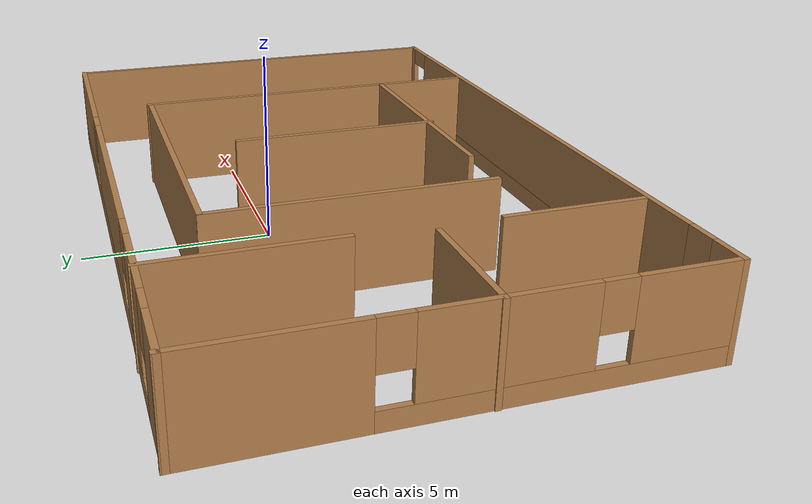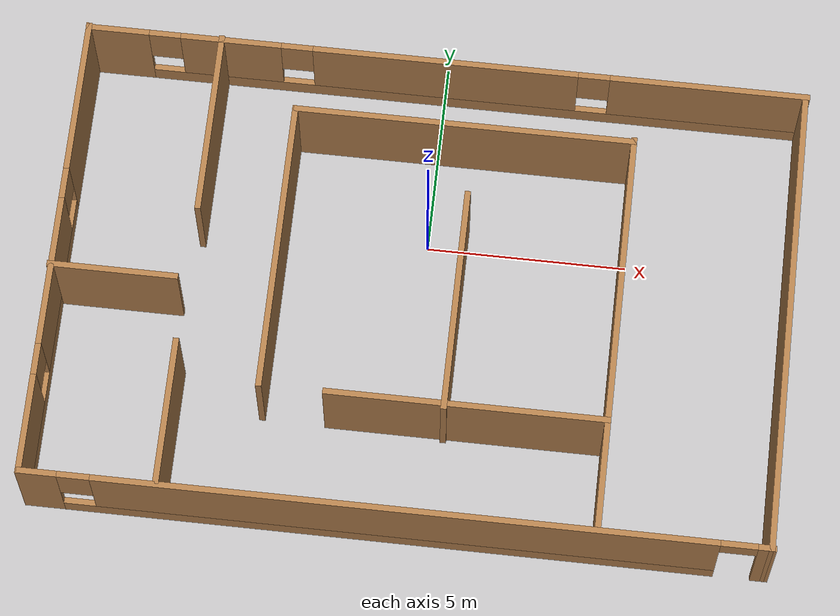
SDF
<?xml version='1.0'?>
<sdf version='1.7'>
  <model name='Building'>
    <pose>0.005469 -1.80858 0 0 -0 0</pose>
    <link name='Wall_0'>
      <pose>-9.05381 0.015245 0 0 -0 -1.5708</pose>
      <visual name='Wall_0_Visual_0'>
        <pose>-3.98822 0 1.25 0 -0 0</pose>
        <geometry>
          <box>
            <size>4.02355 0.15 2.5</size>
          </box>
        </geometry>
        <material>
          <script>
            <uri>file://media/materials/scripts/gazebo.material</uri>
            <name>Gazebo/Wood</name>
          </script>
          <ambient>1 1 1 1</ambient>
        </material>
        <meta>
          <layer>0</layer>
        </meta>
      </visual>
      <collision name='Wall_0_Collision_0'>
        <geometry>
          <box>
            <size>4.02355 0.15 2.5</size>
          </box>
        </geometry>
        <pose>-3.98822 0 1.25 0 -0 0</pose>
      </collision>
      <visual name='Wall_0_Visual_1'>
        <pose>2.01178 0 0.25 0 -0 0</pose>
        <geometry>
          <box>
            <size>7.97645 0.15 0.5</size>
          </box>
        </geometry>
        <material>
          <script>
            <uri>file://media/materials/scripts/gazebo.material</uri>
            <name>Gazebo/Wood</name>
          </script>
          <ambient>1 1 1 1</ambient>
        </material>
        <meta>
          <layer>0</layer>
        </meta>
      </visual>
      <collision name='Wall_0_Collision_1'>
        <geometry>
          <box>
            <size>7.97645 0.15 0.5</size>
          </box>
        </geometry>
        <pose>2.01178 0 0.25 0 -0 0</pose>
      </collision>
      <visual name='Wall_0_Visual_2'>
        <pose>0.759746 0 1.5 0 -0 0</pose>
        <geometry>
          <box>
            <size>3.87238 0.15 2</size>
          </box>
        </geometry>
        <material>
          <script>
            <uri>file://media/materials/scripts/gazebo.material</uri>
            <name>Gazebo/Wood</name>
          </script>
          <ambient>1 1 1 1</ambient>
        </material>
        <meta>
          <layer>0</layer>
        </meta>
      </visual>
      <collision name='Wall_0_Collision_2'>
        <geometry>
          <box>
            <size>3.87238 0.15 2</size>
          </box>
        </geometry>
        <pose>0.759746 0 1.5 0 -0 0</pose>
      </collision>
      <visual name='Wall_0_Visual_3'>
        <pose>4.74797 0 1.5 0 -0 0</pose>
        <geometry>
          <box>
            <size>2.50406 0.15 2</size>
          </box>
        </geometry>
        <material>
          <script>
            <uri>file://media/materials/scripts/gazebo.material</uri>
            <name>Gazebo/Wood</name>
          </script>
          <ambient>1 1 1 1</ambient>
        </material>
        <meta>
          <layer>0</layer>
        </meta>
      </visual>
      <collision name='Wall_0_Collision_3'>
        <geometry>
          <box>
            <size>2.50406 0.15 2</size>
          </box>
        </geometry>
        <pose>4.74797 0 1.5 0 -0 0</pose>
      </collision>
      <visual name='Wall_0_Visual_4'>
        <pose>-1.57645 0 1.9 0 -0 0</pose>
        <geometry>
          <box>
            <size>0.8 0.15 1.2</size>
          </box>
        </geometry>
        <material>
          <script>
            <uri>file://media/materials/scripts/gazebo.material</uri>
            <name>Gazebo/Wood</name>
          </script>
          <ambient>1 1 1 1</ambient>
        </material>
        <meta>
          <layer>0</layer>
        </meta>
      </visual>
      <collision name='Wall_0_Collision_4'>
        <geometry>
          <box>
            <size>0.8 0.15 1.2</size>
          </box>
        </geometry>
        <pose>-1.57645 0 1.9 0 -0 0</pose>
      </collision>
      <visual name='Wall_0_Visual_5'>
        <pose>3.09594 0 1.9 0 -0 0</pose>
        <geometry>
          <box>
            <size>0.8 0.15 1.2</size>
          </box>
        </geometry>
        <material>
          <script>
            <uri>file://media/materials/scripts/gazebo.material</uri>
            <name>Gazebo/Wood</name>
          </script>
          <ambient>1 1 1 1</ambient>
        </material>
        <meta>
          <layer>0</layer>
        </meta>
      </visual>
      <collision name='Wall_0_Collision_5'>
        <geometry>
          <box>
            <size>0.8 0.15 1.2</size>
          </box>
        </geometry>
        <pose>3.09594 0 1.9 0 -0 0</pose>
      </collision>
    </link>
    <link name='Wall_1'>
      <pose>0.015143 -5.94264 0 0 -0 -0.000253</pose>
      <visual name='Wall_1_Visual_0'>
        <pose>-8.64249 0 1.25 0 -0 0</pose>
        <geometry>
          <box>
            <size>1.00381 0.15 2.5</size>
          </box>
        </geometry>
        <material>
          <script>
            <uri>file://media/materials/scripts/gazebo.material</uri>
            <name>Gazebo/Wood</name>
          </script>
          <ambient>1 1 1 1</ambient>
        </material>
        <meta>
          <layer>0</layer>
        </meta>
      </visual>
      <collision name='Wall_1_Collision_0'>
        <geometry>
          <box>
            <size>1.00381 0.15 2.5</size>
          </box>
        </geometry>
        <pose>-8.64249 0 1.25 0 -0 0</pose>
      </collision>
      <visual name='Wall_1_Visual_1'>
        <pose>8.92488 0 1.25 0 -0 0</pose>
        <geometry>
          <box>
            <size>0.439028 0.15 2.5</size>
          </box>
        </geometry>
        <material>
          <script>
            <uri>file://media/materials/scripts/gazebo.material</uri>
            <name>Gazebo/Wood</name>
          </script>
          <ambient>1 1 1 1</ambient>
        </material>
        <meta>
          <layer>0</layer>
        </meta>
      </visual>
      <collision name='Wall_1_Collision_1'>
        <geometry>
          <box>
            <size>0.439028 0.15 2.5</size>
          </box>
        </geometry>
        <pose>8.92488 0 1.25 0 -0 0</pose>
      </collision>
      <visual name='Wall_1_Visual_2'>
        <pose>-0.167608 0 0.25 0 -0 0</pose>
        <geometry>
          <box>
            <size>15.9459 0.15 0.5</size>
          </box>
        </geometry>
        <material>
          <script>
            <uri>file://media/materials/scripts/gazebo.material</uri>
            <name>Gazebo/Wood</name>
          </script>
          <ambient>1 1 1 1</ambient>
        </material>
        <meta>
          <layer>0</layer>
        </meta>
      </visual>
      <collision name='Wall_1_Collision_2'>
        <geometry>
          <box>
            <size>15.9459 0.15 0.5</size>
          </box>
        </geometry>
        <pose>-0.167608 0 0.25 0 -0 0</pose>
      </collision>
      <visual name='Wall_1_Visual_3'>
        <pose>0.232392 0 1.5 0 -0 0</pose>
        <geometry>
          <box>
            <size>15.1459 0.15 2</size>
          </box>
        </geometry>
        <material>
          <script>
            <uri>file://media/materials/scripts/gazebo.material</uri>
            <name>Gazebo/Wood</name>
          </script>
          <ambient>1 1 1 1</ambient>
        </material>
        <meta>
          <layer>0</layer>
        </meta>
      </visual>
      <collision name='Wall_1_Collision_3'>
        <geometry>
          <box>
            <size>15.1459 0.15 2</size>
          </box>
        </geometry>
        <pose>0.232392 0 1.5 0 -0 0</pose>
      </collision>
      <visual name='Wall_1_Visual_4'>
        <pose>-7.74058 0 1.9 0 -0 0</pose>
        <geometry>
          <box>
            <size>0.8 0.15 1.2</size>
          </box>
        </geometry>
        <material>
          <script>
            <uri>file://media/materials/scripts/gazebo.material</uri>
            <name>Gazebo/Wood</name>
          </script>
          <ambient>1 1 1 1</ambient>
        </material>
        <meta>
          <layer>0</layer>
        </meta>
      </visual>
      <collision name='Wall_1_Collision_4'>
        <geometry>
          <box>
            <size>0.8 0.15 1.2</size>
          </box>
        </geometry>
        <pose>-7.74058 0 1.9 0 -0 0</pose>
      </collision>
      <visual name='Wall_1_Visual_5'>
        <pose>8.25537 0 2.25 0 -0 0</pose>
        <geometry>
          <box>
            <size>0.9 0.15 0.5</size>
          </box>
        </geometry>
        <material>
          <script>
            <uri>file://media/materials/scripts/gazebo.material</uri>
            <name>Gazebo/Wood</name>
          </script>
          <ambient>1 1 1 1</ambient>
        </material>
        <meta>
          <layer>0</layer>
        </meta>
      </visual>
      <collision name='Wall_1_Collision_5'>
        <geometry>
          <box>
            <size>0.9 0.15 0.5</size>
          </box>
        </geometry>
        <pose>8.25537 0 2.25 0 -0 0</pose>
      </collision>
    </link>
    <link name='Wall_18'>
      <collision name='Wall_18_Collision'>
        <geometry>
          <box>
            <size>7 0.15 2.5</size>
          </box>
        </geometry>
        <pose>0 0 1.25 0 -0 0</pose>
      </collision>
      <visual name='Wall_18_Visual'>
        <pose>0 0 1.25 0 -0 0</pose>
        <geometry>
          <box>
            <size>7 0.15 2.5</size>
          </box>
        </geometry>
        <material>
          <script>
            <uri>file://media/materials/scripts/gazebo.material</uri>
            <name>Gazebo/Wood</name>
          </script>
          <ambient>1 1 1 1</ambient>
        </material>
        <meta>
          <layer>0</layer>
        </meta>
      </visual>
      <pose>1.45861 -3.14622 0 0 -0 0</pose>
    </link>
    <link name='Wall_2'>
      <collision name='Wall_2_Collision'>
        <geometry>
          <box>
            <size>12 0.15 2.5</size>
          </box>
        </geometry>
        <pose>0 0 1.25 0 -0 0</pose>
      </collision>
      <visual name='Wall_2_Visual'>
        <pose>0 0 1.25 0 -0 0</pose>
        <geometry>
          <box>
            <size>12 0.15 2.5</size>
          </box>
        </geometry>
        <material>
          <script>
            <uri>file://media/materials/scripts/gazebo.material</uri>
            <name>Gazebo/Wood</name>
          </script>
          <ambient>1 1 1 1</ambient>
        </material>
        <meta>
          <layer>0</layer>
        </meta>
      </visual>
      <pose>9.04892 -0.019933 0 0 -0 1.5708</pose>
    </link>
    <link name='Wall_20'>
      <collision name='Wall_20_Collision'>
        <geometry>
          <box>
            <size>5.75 0.15 2.5</size>
          </box>
        </geometry>
        <pose>0 0 1.25 0 -0 0</pose>
      </collision>
      <visual name='Wall_20_Visual'>
        <pose>0 0 1.25 0 -0 0</pose>
        <geometry>
          <box>
            <size>5.75 0.15 2.5</size>
          </box>
        </geometry>
        <material>
          <script>
            <uri>file://media/materials/scripts/gazebo.material</uri>
            <name>Gazebo/Wood</name>
          </script>
          <ambient>1 1 1 1</ambient>
        </material>
        <meta>
          <layer>0</layer>
        </meta>
      </visual>
      <pose>0.913973 -0.425041 0 0 -0 1.5708</pose>
    </link>
    <link name='Wall_22'>
      <collision name='Wall_22_Collision'>
        <geometry>
          <box>
            <size>4.75 0.15 2.5</size>
          </box>
        </geometry>
        <pose>0 0 1.25 0 -0 0</pose>
      </collision>
      <visual name='Wall_22_Visual'>
        <pose>0 0 1.25 0 -0 0</pose>
        <geometry>
          <box>
            <size>4.75 0.15 2.5</size>
          </box>
        </geometry>
        <material>
          <script>
            <uri>file://media/materials/scripts/gazebo.material</uri>
            <name>Gazebo/Wood</name>
          </script>
          <ambient>1 1 1 1</ambient>
        </material>
        <meta>
          <layer>0</layer>
        </meta>
      </visual>
      <pose>-5.67865 3.64495 0 0 -0 -1.5708</pose>
    </link>
    <link name='Wall_24'>
      <collision name='Wall_24_Collision'>
        <geometry>
          <box>
            <size>3.25 0.15 2.5</size>
          </box>
        </geometry>
        <pose>0 0 1.25 0 -0 0</pose>
      </collision>
      <visual name='Wall_24_Visual'>
        <pose>0 0 1.25 0 -0 0</pose>
        <geometry>
          <box>
            <size>3.25 0.15 2.5</size>
          </box>
        </geometry>
        <material>
          <script>
            <uri>file://media/materials/scripts/gazebo.material</uri>
            <name>Gazebo/Wood</name>
          </script>
          <ambient>1 1 1 1</ambient>
        </material>
        <meta>
          <layer>0</layer>
        </meta>
      </visual>
      <pose>-7.53456 -0.570766 0 0 -0 3.14159</pose>
    </link>
    <link name='Wall_26'>
      <collision name='Wall_26_Collision'>
        <geometry>
          <box>
            <size>3.75 0.15 2.5</size>
          </box>
        </geometry>
        <pose>0 0 1.25 0 -0 0</pose>
      </collision>
      <visual name='Wall_26_Visual'>
        <pose>0 0 1.25 0 -0 0</pose>
        <geometry>
          <box>
            <size>3.75 0.15 2.5</size>
          </box>
        </geometry>
        <material>
          <script>
            <uri>file://media/materials/scripts/gazebo.material</uri>
            <name>Gazebo/Wood</name>
          </script>
          <ambient>1 1 1 1</ambient>
        </material>
        <meta>
          <layer>0</layer>
        </meta>
      </visual>
      <pose>-5.73983 -4.05323 0 0 -0 -1.5708</pose>
    </link>
    <link name='Wall_5'>
      <pose>0.015143 5.90736 0 0 -0 -0.000253</pose>
      <visual name='Wall_5_Visual_0'>
        <pose>-8.33937 0 1.25 0 -0 0</pose>
        <geometry>
          <box>
            <size>1.61005 0.15 2.5</size>
          </box>
        </geometry>
        <material>
          <script>
            <uri>file://media/materials/scripts/gazebo.material</uri>
            <name>Gazebo/Wood</name>
          </script>
          <ambient>1 1 1 1</ambient>
        </material>
        <meta>
          <layer>0</layer>
        </meta>
      </visual>
      <collision name='Wall_5_Collision_0'>
        <geometry>
          <box>
            <size>1.61005 0.15 2.5</size>
          </box>
        </geometry>
        <pose>-8.33937 0 1.25 0 -0 0</pose>
      </collision>
      <visual name='Wall_5_Visual_1'>
        <pose>0.805026 0 0.25 0 -0 0</pose>
        <geometry>
          <box>
            <size>16.6787 0.15 0.5</size>
          </box>
        </geometry>
        <material>
          <script>
            <uri>file://media/materials/scripts/gazebo.material</uri>
            <name>Gazebo/Wood</name>
          </script>
          <ambient>1 1 1 1</ambient>
        </material>
        <meta>
          <layer>0</layer>
        </meta>
      </visual>
      <collision name='Wall_5_Collision_1'>
        <geometry>
          <box>
            <size>16.6787 0.15 0.5</size>
          </box>
        </geometry>
        <pose>0.805026 0 0.25 0 -0 0</pose>
      </collision>
      <visual name='Wall_5_Visual_2'>
        <pose>-5.45773 0 1.5 0 -0 0</pose>
        <geometry>
          <box>
            <size>2.55322 0.15 2</size>
          </box>
        </geometry>
        <material>
          <script>
            <uri>file://media/materials/scripts/gazebo.material</uri>
            <name>Gazebo/Wood</name>
          </script>
          <ambient>1 1 1 1</ambient>
        </material>
        <meta>
          <layer>0</layer>
        </meta>
      </visual>
      <collision name='Wall_5_Collision_2'>
        <geometry>
          <box>
            <size>2.55322 0.15 2</size>
          </box>
        </geometry>
        <pose>-5.45773 0 1.5 0 -0 0</pose>
      </collision>
      <visual name='Wall_5_Visual_3'>
        <pose>-0.028206 0 1.5 0 -0 0</pose>
        <geometry>
          <box>
            <size>6.70584 0.15 2</size>
          </box>
        </geometry>
        <material>
          <script>
            <uri>file://media/materials/scripts/gazebo.material</uri>
            <name>Gazebo/Wood</name>
          </script>
          <ambient>1 1 1 1</ambient>
        </material>
        <meta>
          <layer>0</layer>
        </meta>
      </visual>
      <collision name='Wall_5_Collision_3'>
        <geometry>
          <box>
            <size>6.70584 0.15 2</size>
          </box>
        </geometry>
        <pose>-0.028206 0 1.5 0 -0 0</pose>
      </collision>
      <visual name='Wall_5_Visual_4'>
        <pose>6.63455 0 1.5 0 -0 0</pose>
        <geometry>
          <box>
            <size>5.01968 0.15 2</size>
          </box>
        </geometry>
        <material>
          <script>
            <uri>file://media/materials/scripts/gazebo.material</uri>
            <name>Gazebo/Wood</name>
          </script>
          <ambient>1 1 1 1</ambient>
        </material>
        <meta>
          <layer>0</layer>
        </meta>
      </visual>
      <collision name='Wall_5_Collision_4'>
        <geometry>
          <box>
            <size>5.01968 0.15 2</size>
          </box>
        </geometry>
        <pose>6.63455 0 1.5 0 -0 0</pose>
      </collision>
      <visual name='Wall_5_Visual_5'>
        <pose>-7.13434 0 1.9 0 -0 0</pose>
        <geometry>
          <box>
            <size>0.8 0.15 1.2</size>
          </box>
        </geometry>
        <material>
          <script>
            <uri>file://media/materials/scripts/gazebo.material</uri>
            <name>Gazebo/Wood</name>
          </script>
          <ambient>1 1 1 1</ambient>
        </material>
        <meta>
          <layer>0</layer>
        </meta>
      </visual>
      <collision name='Wall_5_Collision_5'>
        <geometry>
          <box>
            <size>0.8 0.15 1.2</size>
          </box>
        </geometry>
        <pose>-7.13434 0 1.9 0 -0 0</pose>
      </collision>
      <visual name='Wall_5_Visual_6'>
        <pose>-3.78112 0 1.9 0 -0 0</pose>
        <geometry>
          <box>
            <size>0.8 0.15 1.2</size>
          </box>
        </geometry>
        <material>
          <script>
            <uri>file://media/materials/scripts/gazebo.material</uri>
            <name>Gazebo/Wood</name>
          </script>
          <ambient>1 1 1 1</ambient>
        </material>
        <meta>
          <layer>0</layer>
        </meta>
      </visual>
      <collision name='Wall_5_Collision_6'>
        <geometry>
          <box>
            <size>0.8 0.15 1.2</size>
          </box>
        </geometry>
        <pose>-3.78112 0 1.9 0 -0 0</pose>
      </collision>
      <visual name='Wall_5_Visual_7'>
        <pose>3.72471 0 1.9 0 -0 0</pose>
        <geometry>
          <box>
            <size>0.8 0.15 1.2</size>
          </box>
        </geometry>
        <material>
          <script>
            <uri>file://media/materials/scripts/gazebo.material</uri>
            <name>Gazebo/Wood</name>
          </script>
          <ambient>1 1 1 1</ambient>
        </material>
        <meta>
          <layer>0</layer>
        </meta>
      </visual>
      <collision name='Wall_5_Collision_7'>
        <geometry>
          <box>
            <size>0.8 0.15 1.2</size>
          </box>
        </geometry>
        <pose>3.72471 0 1.9 0 -0 0</pose>
      </collision>
    </link>
    <link name='Wall_7'>
      <collision name='Wall_7_Collision'>
        <geometry>
          <box>
            <size>10.25 0.15 2.5</size>
          </box>
        </geometry>
        <pose>0 0 1.25 0 -0 0</pose>
      </collision>
      <visual name='Wall_7_Visual'>
        <pose>0 0 1.25 0 -0 0</pose>
        <geometry>
          <box>
            <size>10.25 0.15 2.5</size>
          </box>
        </geometry>
        <material>
          <script>
            <uri>file://media/materials/scripts/gazebo.material</uri>
            <name>Gazebo/Wood</name>
          </script>
          <ambient>1 1 1 1</ambient>
        </material>
        <meta>
          <layer>0</layer>
        </meta>
      </visual>
      <pose>4.88554 -0.786017 0 0 -0 1.5708</pose>
    </link>
    <link name='Wall_8'>
      <collision name='Wall_8_Collision'>
        <geometry>
          <box>
            <size>8.60745 0.15 2.5</size>
          </box>
        </geometry>
        <pose>0 0 1.25 0 -0 0</pose>
      </collision>
      <visual name='Wall_8_Visual'>
        <pose>0 0 1.25 0 -0 0</pose>
        <geometry>
          <box>
            <size>8.60745 0.15 2.5</size>
          </box>
        </geometry>
        <material>
          <script>
            <uri>file://media/materials/scripts/gazebo.material</uri>
            <name>Gazebo/Wood</name>
          </script>
          <ambient>1 1 1 1</ambient>
        </material>
        <meta>
          <layer>0</layer>
        </meta>
      </visual>
      <pose>0.656815 4.2288 0 0 -0 3.14159</pose>
    </link>
    <link name='Wall_9'>
      <collision name='Wall_9_Collision'>
        <geometry>
          <box>
            <size>7.5 0.15 2.5</size>
          </box>
        </geometry>
        <pose>0 0 1.25 0 -0 0</pose>
      </collision>
      <visual name='Wall_9_Visual'>
        <pose>0 0 1.25 0 -0 0</pose>
        <geometry>
          <box>
            <size>7.5 0.15 2.5</size>
          </box>
        </geometry>
        <material>
          <script>
            <uri>file://media/materials/scripts/gazebo.material</uri>
            <name>Gazebo/Wood</name>
          </script>
          <ambient>1 1 1 1</ambient>
        </material>
        <meta>
          <layer>0</layer>
        </meta>
      </visual>
      <pose>-3.6025 0.553804 0 0 -0 -1.5708</pose>
    </link>
    <static>1</static>
  </model>
</sdf>
